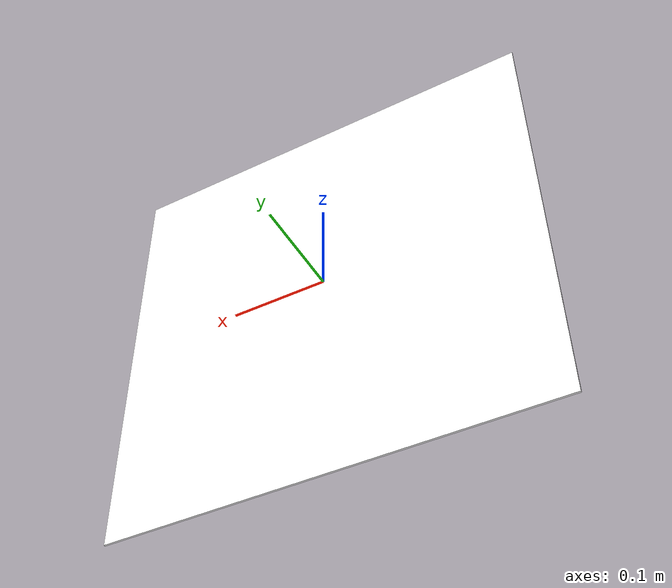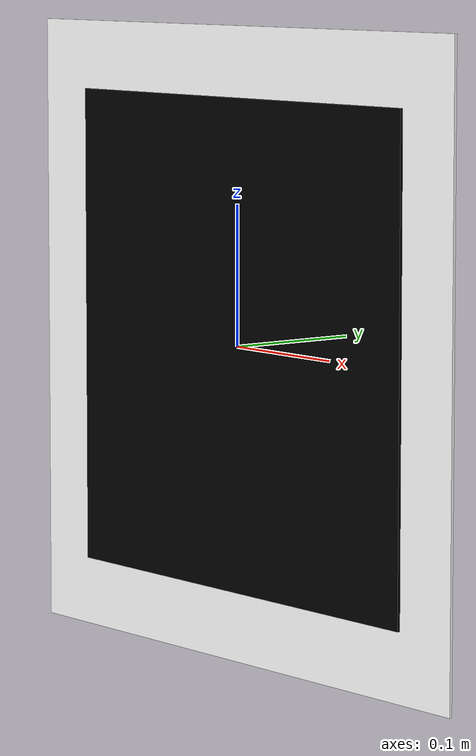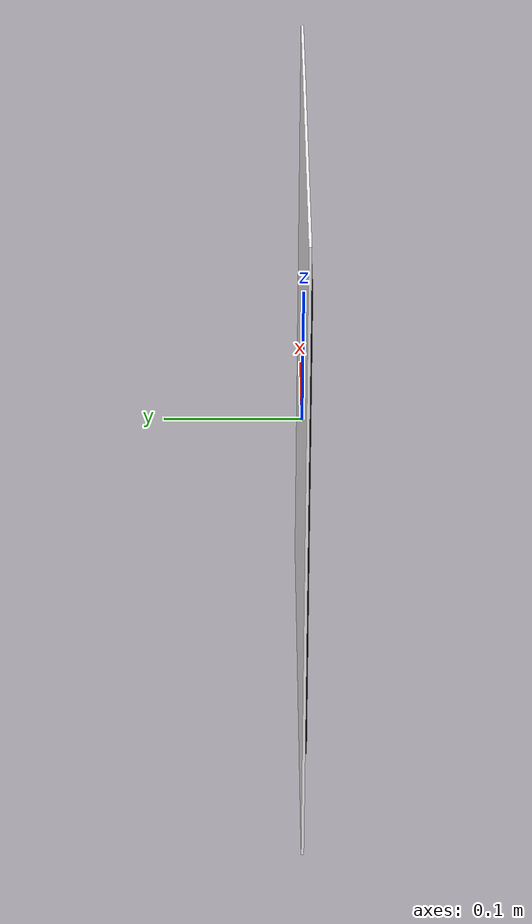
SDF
<?xml version="1.0"?>
<sdf version="1.9">
  <model name="aruco_marker_993">
    <static>true</static>

    <link name="link">
      <visual name="front">
        <pose>0 0 0 0 0 0</pose>
        <geometry>
          <box>
            <size>0.45 0.002 0.45</size>
          </box>
        </geometry>

        <material>
          <ambient>1 1 1 1</ambient>
          <diffuse>1 1 1 1</diffuse>
          <specular>0.1 0.1 0.1 1</specular>
          <emissive>0 0 0 1</emissive>

          <pbr>
            <metal>
              <albedo_map>
                model://aruco/aruco_marker_993/materials/textures/marker_993.png
              </albedo_map>
              <emissive_map>
                model://aruco/aruco_marker_993/materials/textures/marker_993.png
              </emissive_map>
            </metal>
          </pbr>
        </material>
      </visual>

      <visual name="back">
        <pose>0 -0.002 0 0 0 3.1416</pose>
        <geometry>
          <box>
            <size>0.35 0.002 0.35</size>
          </box>
        </geometry>
        <material>
          <ambient>0 0 0 1</ambient>
          <diffuse>0 0 0 1</diffuse>
        </material>
      </visual>

    </link>

  </model>
</sdf>
